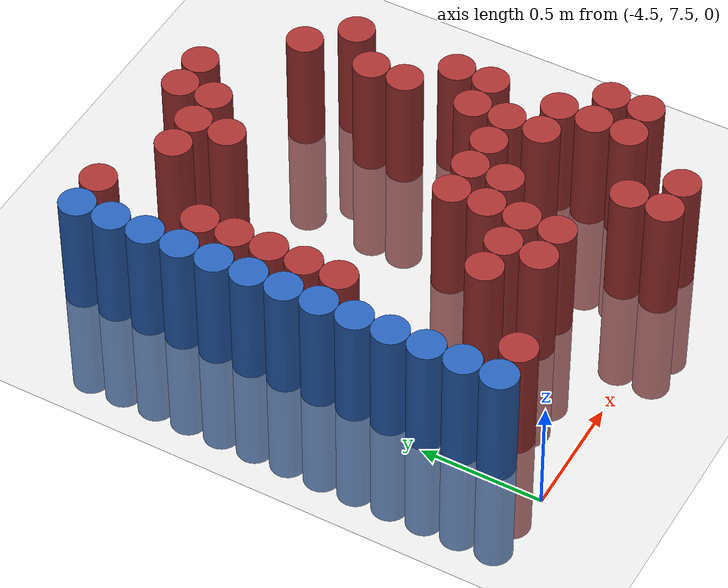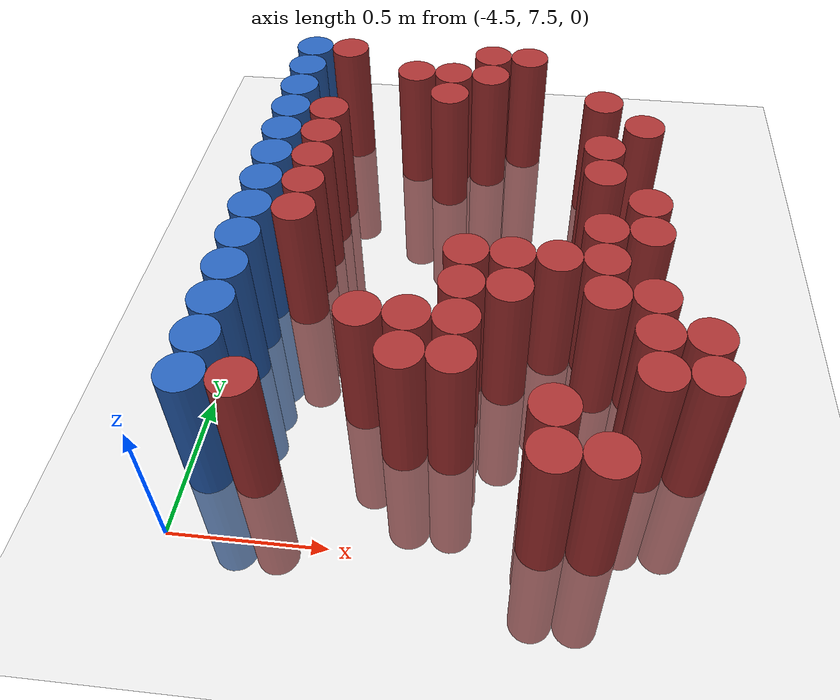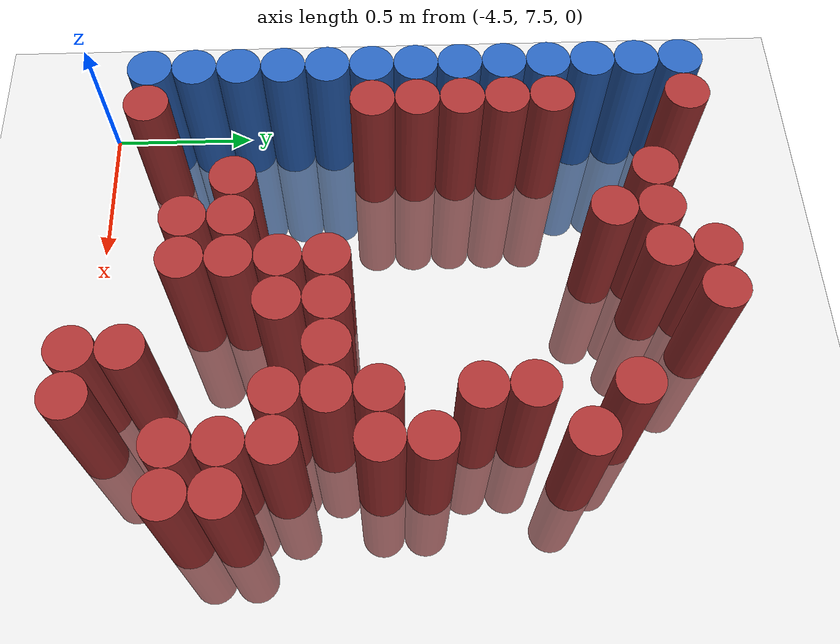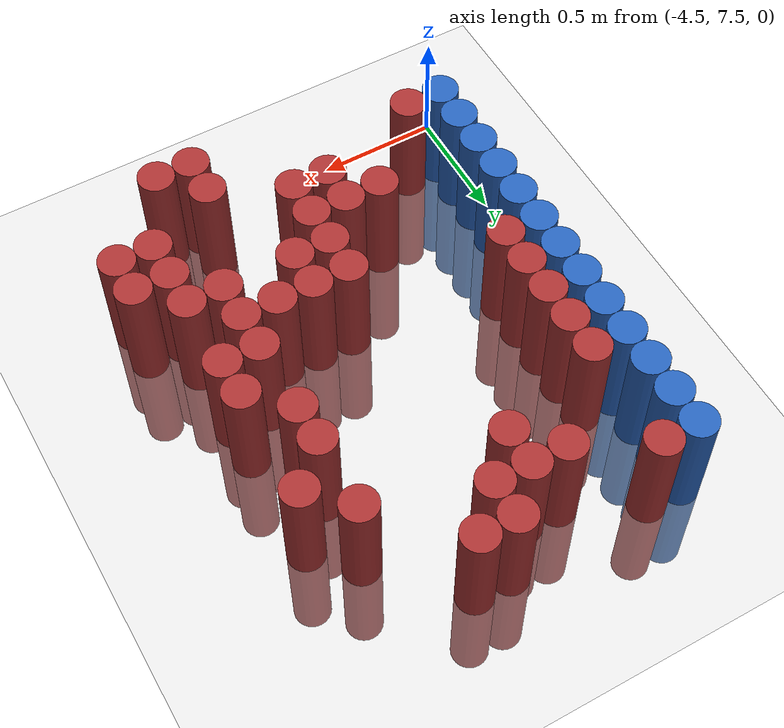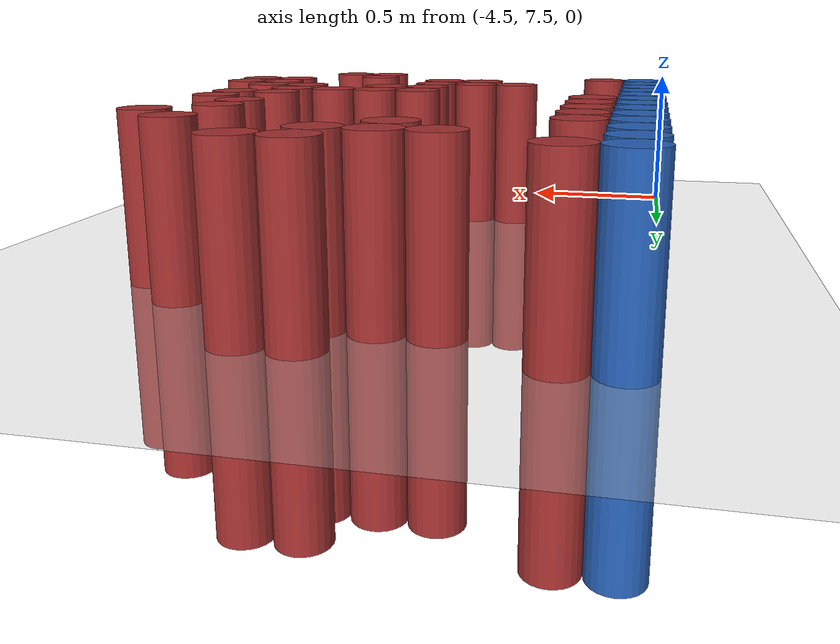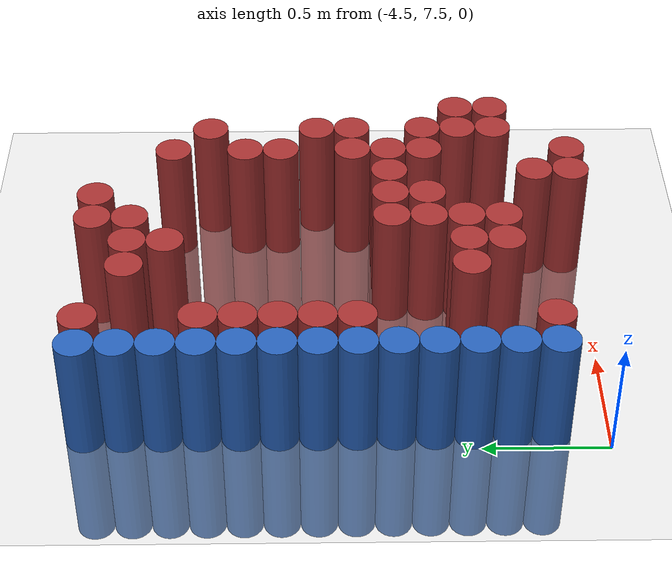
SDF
<sdf version="1.6">
 <world name="default">
  <model name="ground_plane">
   <static>1</static>
   <link name="link">
    <collision name="collision">
     <geometry><plane><normal>0 0 1</normal><size>100 100</size></plane></geometry>
     <surface><friction><ode><mu>100</mu><mu2>50</mu2></ode></friction></surface>
    </collision>
    <visual name="visual">
     <cast_shadows>0</cast_shadows>
     <geometry><plane><normal>0 0 1</normal><size>100 100</size></plane></geometry>
     <material>
      <script><uri>file://media/materials/scripts/gazebo.material</uri><name>Gazebo/Grey</name></script>
     </material>
    </visual>
   </link>
  </model>
  <model name="unit_cylinder_113">
   <static>1</static>
   <pose>-4.425000 7.725000 0.000000 0.000000 0.000000 0.000000</pose>
   <link name="link">
    <inertial>
     <mass>1</mass>
     <inertia><ixx>0.145833</ixx><ixy>0</ixy><ixz>0</ixz><iyy>0.145833</iyy><iyz>0</iyz><izz>0.125</izz></inertia>
    </inertial>
    <collision name="collision">
     <geometry><cylinder><radius>0.075000</radius><length>1</length></cylinder></geometry>
    </collision>
    <visual name="visual">
     <geometry><cylinder><radius>0.075000</radius><length>1</length></cylinder></geometry>
     <material>
      <ambient>0.152000 0.379000 0.720000 1</ambient>
      <diffuse>0.152000 0.379000 0.720000 1</diffuse>
     </material>
     <material>
      <script><name>Gazebo/Grey</name><uri>file://media/materials/scripts/gazebo.material</uri></script>
     </material>
    </visual>
   </link>
  </model>
  <model name="unit_cylinder_114">
   <static>1</static>
   <pose>-4.425000 7.875000 0.000000 0.000000 0.000000 0.000000</pose>
   <link name="link">
    <inertial>
     <mass>1</mass>
     <inertia><ixx>0.145833</ixx><ixy>0</ixy><ixz>0</ixz><iyy>0.145833</iyy><iyz>0</iyz><izz>0.125</izz></inertia>
    </inertial>
    <collision name="collision">
     <geometry><cylinder><radius>0.075000</radius><length>1</length></cylinder></geometry>
    </collision>
    <visual name="visual">
     <geometry><cylinder><radius>0.075000</radius><length>1</length></cylinder></geometry>
     <material>
      <ambient>0.152000 0.379000 0.720000 1</ambient>
      <diffuse>0.152000 0.379000 0.720000 1</diffuse>
     </material>
     <material>
      <script><name>Gazebo/Grey</name><uri>file://media/materials/scripts/gazebo.material</uri></script>
     </material>
    </visual>
   </link>
  </model>
  <model name="unit_cylinder_115">
   <static>1</static>
   <pose>-4.425000 8.025000 0.000000 0.000000 0.000000 0.000000</pose>
   <link name="link">
    <inertial>
     <mass>1</mass>
     <inertia><ixx>0.145833</ixx><ixy>0</ixy><ixz>0</ixz><iyy>0.145833</iyy><iyz>0</iyz><izz>0.125</izz></inertia>
    </inertial>
    <collision name="collision">
     <geometry><cylinder><radius>0.075000</radius><length>1</length></cylinder></geometry>
    </collision>
    <visual name="visual">
     <geometry><cylinder><radius>0.075000</radius><length>1</length></cylinder></geometry>
     <material>
      <ambient>0.152000 0.379000 0.720000 1</ambient>
      <diffuse>0.152000 0.379000 0.720000 1</diffuse>
     </material>
     <material>
      <script><name>Gazebo/Grey</name><uri>file://media/materials/scripts/gazebo.material</uri></script>
     </material>
    </visual>
   </link>
  </model>
  <model name="unit_cylinder_116">
   <static>1</static>
   <pose>-4.425000 8.175000 0.000000 0.000000 0.000000 0.000000</pose>
   <link name="link">
    <inertial>
     <mass>1</mass>
     <inertia><ixx>0.145833</ixx><ixy>0</ixy><ixz>0</ixz><iyy>0.145833</iyy><iyz>0</iyz><izz>0.125</izz></inertia>
    </inertial>
    <collision name="collision">
     <geometry><cylinder><radius>0.075000</radius><length>1</length></cylinder></geometry>
    </collision>
    <visual name="visual">
     <geometry><cylinder><radius>0.075000</radius><length>1</length></cylinder></geometry>
     <material>
      <ambient>0.152000 0.379000 0.720000 1</ambient>
      <diffuse>0.152000 0.379000 0.720000 1</diffuse>
     </material>
     <material>
      <script><name>Gazebo/Grey</name><uri>file://media/materials/scripts/gazebo.material</uri></script>
     </material>
    </visual>
   </link>
  </model>
  <model name="unit_cylinder_117">
   <static>1</static>
   <pose>-4.425000 8.325000 0.000000 0.000000 0.000000 0.000000</pose>
   <link name="link">
    <inertial>
     <mass>1</mass>
     <inertia><ixx>0.145833</ixx><ixy>0</ixy><ixz>0</ixz><iyy>0.145833</iyy><iyz>0</iyz><izz>0.125</izz></inertia>
    </inertial>
    <collision name="collision">
     <geometry><cylinder><radius>0.075000</radius><length>1</length></cylinder></geometry>
    </collision>
    <visual name="visual">
     <geometry><cylinder><radius>0.075000</radius><length>1</length></cylinder></geometry>
     <material>
      <ambient>0.152000 0.379000 0.720000 1</ambient>
      <diffuse>0.152000 0.379000 0.720000 1</diffuse>
     </material>
     <material>
      <script><name>Gazebo/Grey</name><uri>file://media/materials/scripts/gazebo.material</uri></script>
     </material>
    </visual>
   </link>
  </model>
  <model name="unit_cylinder_118">
   <static>1</static>
   <pose>-4.425000 8.475000 0.000000 0.000000 0.000000 0.000000</pose>
   <link name="link">
    <inertial>
     <mass>1</mass>
     <inertia><ixx>0.145833</ixx><ixy>0</ixy><ixz>0</ixz><iyy>0.145833</iyy><iyz>0</iyz><izz>0.125</izz></inertia>
    </inertial>
    <collision name="collision">
     <geometry><cylinder><radius>0.075000</radius><length>1</length></cylinder></geometry>
    </collision>
    <visual name="visual">
     <geometry><cylinder><radius>0.075000</radius><length>1</length></cylinder></geometry>
     <material>
      <ambient>0.152000 0.379000 0.720000 1</ambient>
      <diffuse>0.152000 0.379000 0.720000 1</diffuse>
     </material>
     <material>
      <script><name>Gazebo/Grey</name><uri>file://media/materials/scripts/gazebo.material</uri></script>
     </material>
    </visual>
   </link>
  </model>
  <model name="unit_cylinder_119">
   <static>1</static>
   <pose>-4.425000 8.625000 0.000000 0.000000 0.000000 0.000000</pose>
   <link name="link">
    <inertial>
     <mass>1</mass>
     <inertia><ixx>0.145833</ixx><ixy>0</ixy><ixz>0</ixz><iyy>0.145833</iyy><iyz>0</iyz><izz>0.125</izz></inertia>
    </inertial>
    <collision name="collision">
     <geometry><cylinder><radius>0.075000</radius><length>1</length></cylinder></geometry>
    </collision>
    <visual name="visual">
     <geometry><cylinder><radius>0.075000</radius><length>1</length></cylinder></geometry>
     <material>
      <ambient>0.152000 0.379000 0.720000 1</ambient>
      <diffuse>0.152000 0.379000 0.720000 1</diffuse>
     </material>
     <material>
      <script><name>Gazebo/Grey</name><uri>file://media/materials/scripts/gazebo.material</uri></script>
     </material>
    </visual>
   </link>
  </model>
  <model name="unit_cylinder_120">
   <static>1</static>
   <pose>-4.425000 8.775000 0.000000 0.000000 0.000000 0.000000</pose>
   <link name="link">
    <inertial>
     <mass>1</mass>
     <inertia><ixx>0.145833</ixx><ixy>0</ixy><ixz>0</ixz><iyy>0.145833</iyy><iyz>0</iyz><izz>0.125</izz></inertia>
    </inertial>
    <collision name="collision">
     <geometry><cylinder><radius>0.075000</radius><length>1</length></cylinder></geometry>
    </collision>
    <visual name="visual">
     <geometry><cylinder><radius>0.075000</radius><length>1</length></cylinder></geometry>
     <material>
      <ambient>0.152000 0.379000 0.720000 1</ambient>
      <diffuse>0.152000 0.379000 0.720000 1</diffuse>
     </material>
     <material>
      <script><name>Gazebo/Grey</name><uri>file://media/materials/scripts/gazebo.material</uri></script>
     </material>
    </visual>
   </link>
  </model>
  <model name="unit_cylinder_121">
   <static>1</static>
   <pose>-4.425000 8.925000 0.000000 0.000000 0.000000 0.000000</pose>
   <link name="link">
    <inertial>
     <mass>1</mass>
     <inertia><ixx>0.145833</ixx><ixy>0</ixy><ixz>0</ixz><iyy>0.145833</iyy><iyz>0</iyz><izz>0.125</izz></inertia>
    </inertial>
    <collision name="collision">
     <geometry><cylinder><radius>0.075000</radius><length>1</length></cylinder></geometry>
    </collision>
    <visual name="visual">
     <geometry><cylinder><radius>0.075000</radius><length>1</length></cylinder></geometry>
     <material>
      <ambient>0.152000 0.379000 0.720000 1</ambient>
      <diffuse>0.152000 0.379000 0.720000 1</diffuse>
     </material>
     <material>
      <script><name>Gazebo/Grey</name><uri>file://media/materials/scripts/gazebo.material</uri></script>
     </material>
    </visual>
   </link>
  </model>
  <model name="unit_cylinder_122">
   <static>1</static>
   <pose>-4.425000 9.075000 0.000000 0.000000 0.000000 0.000000</pose>
   <link name="link">
    <inertial>
     <mass>1</mass>
     <inertia><ixx>0.145833</ixx><ixy>0</ixy><ixz>0</ixz><iyy>0.145833</iyy><iyz>0</iyz><izz>0.125</izz></inertia>
    </inertial>
    <collision name="collision">
     <geometry><cylinder><radius>0.075000</radius><length>1</length></cylinder></geometry>
    </collision>
    <visual name="visual">
     <geometry><cylinder><radius>0.075000</radius><length>1</length></cylinder></geometry>
     <material>
      <ambient>0.152000 0.379000 0.720000 1</ambient>
      <diffuse>0.152000 0.379000 0.720000 1</diffuse>
     </material>
     <material>
      <script><name>Gazebo/Grey</name><uri>file://media/materials/scripts/gazebo.material</uri></script>
     </material>
    </visual>
   </link>
  </model>
  <model name="unit_cylinder_123">
   <static>1</static>
   <pose>-4.425000 9.225000 0.000000 0.000000 0.000000 0.000000</pose>
   <link name="link">
    <inertial>
     <mass>1</mass>
     <inertia><ixx>0.145833</ixx><ixy>0</ixy><ixz>0</ixz><iyy>0.145833</iyy><iyz>0</iyz><izz>0.125</izz></inertia>
    </inertial>
    <collision name="collision">
     <geometry><cylinder><radius>0.075000</radius><length>1</length></cylinder></geometry>
    </collision>
    <visual name="visual">
     <geometry><cylinder><radius>0.075000</radius><length>1</length></cylinder></geometry>
     <material>
      <ambient>0.152000 0.379000 0.720000 1</ambient>
      <diffuse>0.152000 0.379000 0.720000 1</diffuse>
     </material>
     <material>
      <script><name>Gazebo/Grey</name><uri>file://media/materials/scripts/gazebo.material</uri></script>
     </material>
    </visual>
   </link>
  </model>
  <model name="unit_cylinder_124">
   <static>1</static>
   <pose>-4.425000 9.375000 0.000000 0.000000 0.000000 0.000000</pose>
   <link name="link">
    <inertial>
     <mass>1</mass>
     <inertia><ixx>0.145833</ixx><ixy>0</ixy><ixz>0</ixz><iyy>0.145833</iyy><iyz>0</iyz><izz>0.125</izz></inertia>
    </inertial>
    <collision name="collision">
     <geometry><cylinder><radius>0.075000</radius><length>1</length></cylinder></geometry>
    </collision>
    <visual name="visual">
     <geometry><cylinder><radius>0.075000</radius><length>1</length></cylinder></geometry>
     <material>
      <ambient>0.152000 0.379000 0.720000 1</ambient>
      <diffuse>0.152000 0.379000 0.720000 1</diffuse>
     </material>
     <material>
      <script><name>Gazebo/Grey</name><uri>file://media/materials/scripts/gazebo.material</uri></script>
     </material>
    </visual>
   </link>
  </model>
  <model name="unit_cylinder_125">
   <static>1</static>
   <pose>-4.425000 9.525000 0.000000 0.000000 0.000000 0.000000</pose>
   <link name="link">
    <inertial>
     <mass>1</mass>
     <inertia><ixx>0.145833</ixx><ixy>0</ixy><ixz>0</ixz><iyy>0.145833</iyy><iyz>0</iyz><izz>0.125</izz></inertia>
    </inertial>
    <collision name="collision">
     <geometry><cylinder><radius>0.075000</radius><length>1</length></cylinder></geometry>
    </collision>
    <visual name="visual">
     <geometry><cylinder><radius>0.075000</radius><length>1</length></cylinder></geometry>
     <material>
      <ambient>0.152000 0.379000 0.720000 1</ambient>
      <diffuse>0.152000 0.379000 0.720000 1</diffuse>
     </material>
     <material>
      <script><name>Gazebo/Grey</name><uri>file://media/materials/scripts/gazebo.material</uri></script>
     </material>
    </visual>
   </link>
  </model>
  <model name="unit_cylinder_133">
   <static>1</static>
   <pose>-4.275000 7.725000 0.000000 0.000000 0.000000 0.000000</pose>
   <link name="link">
    <inertial>
     <mass>1</mass>
     <inertia><ixx>0.145833</ixx><ixy>0</ixy><ixz>0</ixz><iyy>0.145833</iyy><iyz>0</iyz><izz>0.125</izz></inertia>
    </inertial>
    <collision name="collision">
     <geometry><cylinder><radius>0.075000</radius><length>1</length></cylinder></geometry>
    </collision>
    <visual name="visual">
     <geometry><cylinder><radius>0.075000</radius><length>1</length></cylinder></geometry>
     <material>
      <ambient>0.648000 0.192000 0.192000 1</ambient>
      <diffuse>0.648000 0.192000 0.192000 1</diffuse>
     </material>
     <material>
      <script><name>Gazebo/Grey</name><uri>file://media/materials/scripts/gazebo.material</uri></script>
     </material>
    </visual>
   </link>
  </model>
  <model name="unit_cylinder_134">
   <static>1</static>
   <pose>-4.275000 8.475000 0.000000 0.000000 0.000000 0.000000</pose>
   <link name="link">
    <inertial>
     <mass>1</mass>
     <inertia><ixx>0.145833</ixx><ixy>0</ixy><ixz>0</ixz><iyy>0.145833</iyy><iyz>0</iyz><izz>0.125</izz></inertia>
    </inertial>
    <collision name="collision">
     <geometry><cylinder><radius>0.075000</radius><length>1</length></cylinder></geometry>
    </collision>
    <visual name="visual">
     <geometry><cylinder><radius>0.075000</radius><length>1</length></cylinder></geometry>
     <material>
      <ambient>0.648000 0.192000 0.192000 1</ambient>
      <diffuse>0.648000 0.192000 0.192000 1</diffuse>
     </material>
     <material>
      <script><name>Gazebo/Grey</name><uri>file://media/materials/scripts/gazebo.material</uri></script>
     </material>
    </visual>
   </link>
  </model>
  <model name="unit_cylinder_135">
   <static>1</static>
   <pose>-4.275000 8.625000 0.000000 0.000000 0.000000 0.000000</pose>
   <link name="link">
    <inertial>
     <mass>1</mass>
     <inertia><ixx>0.145833</ixx><ixy>0</ixy><ixz>0</ixz><iyy>0.145833</iyy><iyz>0</iyz><izz>0.125</izz></inertia>
    </inertial>
    <collision name="collision">
     <geometry><cylinder><radius>0.075000</radius><length>1</length></cylinder></geometry>
    </collision>
    <visual name="visual">
     <geometry><cylinder><radius>0.075000</radius><length>1</length></cylinder></geometry>
     <material>
      <ambient>0.648000 0.192000 0.192000 1</ambient>
      <diffuse>0.648000 0.192000 0.192000 1</diffuse>
     </material>
     <material>
      <script><name>Gazebo/Grey</name><uri>file://media/materials/scripts/gazebo.material</uri></script>
     </material>
    </visual>
   </link>
  </model>
  <model name="unit_cylinder_136">
   <static>1</static>
   <pose>-4.275000 8.775000 0.000000 0.000000 0.000000 0.000000</pose>
   <link name="link">
    <inertial>
     <mass>1</mass>
     <inertia><ixx>0.145833</ixx><ixy>0</ixy><ixz>0</ixz><iyy>0.145833</iyy><iyz>0</iyz><izz>0.125</izz></inertia>
    </inertial>
    <collision name="collision">
     <geometry><cylinder><radius>0.075000</radius><length>1</length></cylinder></geometry>
    </collision>
    <visual name="visual">
     <geometry><cylinder><radius>0.075000</radius><length>1</length></cylinder></geometry>
     <material>
      <ambient>0.648000 0.192000 0.192000 1</ambient>
      <diffuse>0.648000 0.192000 0.192000 1</diffuse>
     </material>
     <material>
      <script><name>Gazebo/Grey</name><uri>file://media/materials/scripts/gazebo.material</uri></script>
     </material>
    </visual>
   </link>
  </model>
  <model name="unit_cylinder_137">
   <static>1</static>
   <pose>-4.275000 8.925000 0.000000 0.000000 0.000000 0.000000</pose>
   <link name="link">
    <inertial>
     <mass>1</mass>
     <inertia><ixx>0.145833</ixx><ixy>0</ixy><ixz>0</ixz><iyy>0.145833</iyy><iyz>0</iyz><izz>0.125</izz></inertia>
    </inertial>
    <collision name="collision">
     <geometry><cylinder><radius>0.075000</radius><length>1</length></cylinder></geometry>
    </collision>
    <visual name="visual">
     <geometry><cylinder><radius>0.075000</radius><length>1</length></cylinder></geometry>
     <material>
      <ambient>0.648000 0.192000 0.192000 1</ambient>
      <diffuse>0.648000 0.192000 0.192000 1</diffuse>
     </material>
     <material>
      <script><name>Gazebo/Grey</name><uri>file://media/materials/scripts/gazebo.material</uri></script>
     </material>
    </visual>
   </link>
  </model>
  <model name="unit_cylinder_138">
   <static>1</static>
   <pose>-4.275000 9.075000 0.000000 0.000000 0.000000 0.000000</pose>
   <link name="link">
    <inertial>
     <mass>1</mass>
     <inertia><ixx>0.145833</ixx><ixy>0</ixy><ixz>0</ixz><iyy>0.145833</iyy><iyz>0</iyz><izz>0.125</izz></inertia>
    </inertial>
    <collision name="collision">
     <geometry><cylinder><radius>0.075000</radius><length>1</length></cylinder></geometry>
    </collision>
    <visual name="visual">
     <geometry><cylinder><radius>0.075000</radius><length>1</length></cylinder></geometry>
     <material>
      <ambient>0.648000 0.192000 0.192000 1</ambient>
      <diffuse>0.648000 0.192000 0.192000 1</diffuse>
     </material>
     <material>
      <script><name>Gazebo/Grey</name><uri>file://media/materials/scripts/gazebo.material</uri></script>
     </material>
    </visual>
   </link>
  </model>
  <model name="unit_cylinder_139">
   <static>1</static>
   <pose>-4.275000 9.525000 0.000000 0.000000 0.000000 0.000000</pose>
   <link name="link">
    <inertial>
     <mass>1</mass>
     <inertia><ixx>0.145833</ixx><ixy>0</ixy><ixz>0</ixz><iyy>0.145833</iyy><iyz>0</iyz><izz>0.125</izz></inertia>
    </inertial>
    <collision name="collision">
     <geometry><cylinder><radius>0.075000</radius><length>1</length></cylinder></geometry>
    </collision>
    <visual name="visual">
     <geometry><cylinder><radius>0.075000</radius><length>1</length></cylinder></geometry>
     <material>
      <ambient>0.648000 0.192000 0.192000 1</ambient>
      <diffuse>0.648000 0.192000 0.192000 1</diffuse>
     </material>
     <material>
      <script><name>Gazebo/Grey</name><uri>file://media/materials/scripts/gazebo.material</uri></script>
     </material>
    </visual>
   </link>
  </model>
  <model name="unit_cylinder_154">
   <static>1</static>
   <pose>-3.975000 8.025000 0.000000 0.000000 0.000000 0.000000</pose>
   <link name="link">
    <inertial>
     <mass>1</mass>
     <inertia><ixx>0.145833</ixx><ixy>0</ixy><ixz>0</ixz><iyy>0.145833</iyy><iyz>0</iyz><izz>0.125</izz></inertia>
    </inertial>
    <collision name="collision">
     <geometry><cylinder><radius>0.075000</radius><length>1</length></cylinder></geometry>
    </collision>
    <visual name="visual">
     <geometry><cylinder><radius>0.075000</radius><length>1</length></cylinder></geometry>
     <material>
      <ambient>0.648000 0.192000 0.192000 1</ambient>
      <diffuse>0.648000 0.192000 0.192000 1</diffuse>
     </material>
     <material>
      <script><name>Gazebo/Grey</name><uri>file://media/materials/scripts/gazebo.material</uri></script>
     </material>
    </visual>
   </link>
  </model>
  <model name="unit_cylinder_155">
   <static>1</static>
   <pose>-3.975000 9.375000 0.000000 0.000000 0.000000 0.000000</pose>
   <link name="link">
    <inertial>
     <mass>1</mass>
     <inertia><ixx>0.145833</ixx><ixy>0</ixy><ixz>0</ixz><iyy>0.145833</iyy><iyz>0</iyz><izz>0.125</izz></inertia>
    </inertial>
    <collision name="collision">
     <geometry><cylinder><radius>0.075000</radius><length>1</length></cylinder></geometry>
    </collision>
    <visual name="visual">
     <geometry><cylinder><radius>0.075000</radius><length>1</length></cylinder></geometry>
     <material>
      <ambient>0.648000 0.192000 0.192000 1</ambient>
      <diffuse>0.648000 0.192000 0.192000 1</diffuse>
     </material>
     <material>
      <script><name>Gazebo/Grey</name><uri>file://media/materials/scripts/gazebo.material</uri></script>
     </material>
    </visual>
   </link>
  </model>
  <model name="unit_cylinder_161">
   <static>1</static>
   <pose>-3.825000 7.875000 0.000000 0.000000 0.000000 0.000000</pose>
   <link name="link">
    <inertial>
     <mass>1</mass>
     <inertia><ixx>0.145833</ixx><ixy>0</ixy><ixz>0</ixz><iyy>0.145833</iyy><iyz>0</iyz><izz>0.125</izz></inertia>
    </inertial>
    <collision name="collision">
     <geometry><cylinder><radius>0.075000</radius><length>1</length></cylinder></geometry>
    </collision>
    <visual name="visual">
     <geometry><cylinder><radius>0.075000</radius><length>1</length></cylinder></geometry>
     <material>
      <ambient>0.648000 0.192000 0.192000 1</ambient>
      <diffuse>0.648000 0.192000 0.192000 1</diffuse>
     </material>
     <material>
      <script><name>Gazebo/Grey</name><uri>file://media/materials/scripts/gazebo.material</uri></script>
     </material>
    </visual>
   </link>
  </model>
  <model name="unit_cylinder_162">
   <static>1</static>
   <pose>-3.825000 8.025000 0.000000 0.000000 0.000000 0.000000</pose>
   <link name="link">
    <inertial>
     <mass>1</mass>
     <inertia><ixx>0.145833</ixx><ixy>0</ixy><ixz>0</ixz><iyy>0.145833</iyy><iyz>0</iyz><izz>0.125</izz></inertia>
    </inertial>
    <collision name="collision">
     <geometry><cylinder><radius>0.075000</radius><length>1</length></cylinder></geometry>
    </collision>
    <visual name="visual">
     <geometry><cylinder><radius>0.075000</radius><length>1</length></cylinder></geometry>
     <material>
      <ambient>0.648000 0.192000 0.192000 1</ambient>
      <diffuse>0.648000 0.192000 0.192000 1</diffuse>
     </material>
     <material>
      <script><name>Gazebo/Grey</name><uri>file://media/materials/scripts/gazebo.material</uri></script>
     </material>
    </visual>
   </link>
  </model>
  <model name="unit_cylinder_163">
   <static>1</static>
   <pose>-3.825000 9.225000 0.000000 0.000000 0.000000 0.000000</pose>
   <link name="link">
    <inertial>
     <mass>1</mass>
     <inertia><ixx>0.145833</ixx><ixy>0</ixy><ixz>0</ixz><iyy>0.145833</iyy><iyz>0</iyz><izz>0.125</izz></inertia>
    </inertial>
    <collision name="collision">
     <geometry><cylinder><radius>0.075000</radius><length>1</length></cylinder></geometry>
    </collision>
    <visual name="visual">
     <geometry><cylinder><radius>0.075000</radius><length>1</length></cylinder></geometry>
     <material>
      <ambient>0.648000 0.192000 0.192000 1</ambient>
      <diffuse>0.648000 0.192000 0.192000 1</diffuse>
     </material>
     <material>
      <script><name>Gazebo/Grey</name><uri>file://media/materials/scripts/gazebo.material</uri></script>
     </material>
    </visual>
   </link>
  </model>
  <model name="unit_cylinder_164">
   <static>1</static>
   <pose>-3.825000 9.375000 0.000000 0.000000 0.000000 0.000000</pose>
   <link name="link">
    <inertial>
     <mass>1</mass>
     <inertia><ixx>0.145833</ixx><ixy>0</ixy><ixz>0</ixz><iyy>0.145833</iyy><iyz>0</iyz><izz>0.125</izz></inertia>
    </inertial>
    <collision name="collision">
     <geometry><cylinder><radius>0.075000</radius><length>1</length></cylinder></geometry>
    </collision>
    <visual name="visual">
     <geometry><cylinder><radius>0.075000</radius><length>1</length></cylinder></geometry>
     <material>
      <ambient>0.648000 0.192000 0.192000 1</ambient>
      <diffuse>0.648000 0.192000 0.192000 1</diffuse>
     </material>
     <material>
      <script><name>Gazebo/Grey</name><uri>file://media/materials/scripts/gazebo.material</uri></script>
     </material>
    </visual>
   </link>
  </model>
  <model name="unit_cylinder_170">
   <static>1</static>
   <pose>-3.675000 7.875000 0.000000 0.000000 0.000000 0.000000</pose>
   <link name="link">
    <inertial>
     <mass>1</mass>
     <inertia><ixx>0.145833</ixx><ixy>0</ixy><ixz>0</ixz><iyy>0.145833</iyy><iyz>0</iyz><izz>0.125</izz></inertia>
    </inertial>
    <collision name="collision">
     <geometry><cylinder><radius>0.075000</radius><length>1</length></cylinder></geometry>
    </collision>
    <visual name="visual">
     <geometry><cylinder><radius>0.075000</radius><length>1</length></cylinder></geometry>
     <material>
      <ambient>0.648000 0.192000 0.192000 1</ambient>
      <diffuse>0.648000 0.192000 0.192000 1</diffuse>
     </material>
     <material>
      <script><name>Gazebo/Grey</name><uri>file://media/materials/scripts/gazebo.material</uri></script>
     </material>
    </visual>
   </link>
  </model>
  <model name="unit_cylinder_171">
   <static>1</static>
   <pose>-3.675000 8.025000 0.000000 0.000000 0.000000 0.000000</pose>
   <link name="link">
    <inertial>
     <mass>1</mass>
     <inertia><ixx>0.145833</ixx><ixy>0</ixy><ixz>0</ixz><iyy>0.145833</iyy><iyz>0</iyz><izz>0.125</izz></inertia>
    </inertial>
    <collision name="collision">
     <geometry><cylinder><radius>0.075000</radius><length>1</length></cylinder></geometry>
    </collision>
    <visual name="visual">
     <geometry><cylinder><radius>0.075000</radius><length>1</length></cylinder></geometry>
     <material>
      <ambient>0.648000 0.192000 0.192000 1</ambient>
      <diffuse>0.648000 0.192000 0.192000 1</diffuse>
     </material>
     <material>
      <script><name>Gazebo/Grey</name><uri>file://media/materials/scripts/gazebo.material</uri></script>
     </material>
    </visual>
   </link>
  </model>
  <model name="unit_cylinder_172">
   <static>1</static>
   <pose>-3.675000 8.175000 0.000000 0.000000 0.000000 0.000000</pose>
   <link name="link">
    <inertial>
     <mass>1</mass>
     <inertia><ixx>0.145833</ixx><ixy>0</ixy><ixz>0</ixz><iyy>0.145833</iyy><iyz>0</iyz><izz>0.125</izz></inertia>
    </inertial>
    <collision name="collision">
     <geometry><cylinder><radius>0.075000</radius><length>1</length></cylinder></geometry>
    </collision>
    <visual name="visual">
     <geometry><cylinder><radius>0.075000</radius><length>1</length></cylinder></geometry>
     <material>
      <ambient>0.648000 0.192000 0.192000 1</ambient>
      <diffuse>0.648000 0.192000 0.192000 1</diffuse>
     </material>
     <material>
      <script><name>Gazebo/Grey</name><uri>file://media/materials/scripts/gazebo.material</uri></script>
     </material>
    </visual>
   </link>
  </model>
  <model name="unit_cylinder_173">
   <static>1</static>
   <pose>-3.675000 8.325000 0.000000 0.000000 0.000000 0.000000</pose>
   <link name="link">
    <inertial>
     <mass>1</mass>
     <inertia><ixx>0.145833</ixx><ixy>0</ixy><ixz>0</ixz><iyy>0.145833</iyy><iyz>0</iyz><izz>0.125</izz></inertia>
    </inertial>
    <collision name="collision">
     <geometry><cylinder><radius>0.075000</radius><length>1</length></cylinder></geometry>
    </collision>
    <visual name="visual">
     <geometry><cylinder><radius>0.075000</radius><length>1</length></cylinder></geometry>
     <material>
      <ambient>0.648000 0.192000 0.192000 1</ambient>
      <diffuse>0.648000 0.192000 0.192000 1</diffuse>
     </material>
     <material>
      <script><name>Gazebo/Grey</name><uri>file://media/materials/scripts/gazebo.material</uri></script>
     </material>
    </visual>
   </link>
  </model>
  <model name="unit_cylinder_174">
   <static>1</static>
   <pose>-3.675000 9.375000 0.000000 0.000000 0.000000 0.000000</pose>
   <link name="link">
    <inertial>
     <mass>1</mass>
     <inertia><ixx>0.145833</ixx><ixy>0</ixy><ixz>0</ixz><iyy>0.145833</iyy><iyz>0</iyz><izz>0.125</izz></inertia>
    </inertial>
    <collision name="collision">
     <geometry><cylinder><radius>0.075000</radius><length>1</length></cylinder></geometry>
    </collision>
    <visual name="visual">
     <geometry><cylinder><radius>0.075000</radius><length>1</length></cylinder></geometry>
     <material>
      <ambient>0.648000 0.192000 0.192000 1</ambient>
      <diffuse>0.648000 0.192000 0.192000 1</diffuse>
     </material>
     <material>
      <script><name>Gazebo/Grey</name><uri>file://media/materials/scripts/gazebo.material</uri></script>
     </material>
    </visual>
   </link>
  </model>
  <model name="unit_cylinder_175">
   <static>1</static>
   <pose>-3.675000 9.525000 0.000000 0.000000 0.000000 0.000000</pose>
   <link name="link">
    <inertial>
     <mass>1</mass>
     <inertia><ixx>0.145833</ixx><ixy>0</ixy><ixz>0</ixz><iyy>0.145833</iyy><iyz>0</iyz><izz>0.125</izz></inertia>
    </inertial>
    <collision name="collision">
     <geometry><cylinder><radius>0.075000</radius><length>1</length></cylinder></geometry>
    </collision>
    <visual name="visual">
     <geometry><cylinder><radius>0.075000</radius><length>1</length></cylinder></geometry>
     <material>
      <ambient>0.648000 0.192000 0.192000 1</ambient>
      <diffuse>0.648000 0.192000 0.192000 1</diffuse>
     </material>
     <material>
      <script><name>Gazebo/Grey</name><uri>file://media/materials/scripts/gazebo.material</uri></script>
     </material>
    </visual>
   </link>
  </model>
  <model name="unit_cylinder_178">
   <static>1</static>
   <pose>-3.525000 8.175000 0.000000 0.000000 0.000000 0.000000</pose>
   <link name="link">
    <inertial>
     <mass>1</mass>
     <inertia><ixx>0.145833</ixx><ixy>0</ixy><ixz>0</ixz><iyy>0.145833</iyy><iyz>0</iyz><izz>0.125</izz></inertia>
    </inertial>
    <collision name="collision">
     <geometry><cylinder><radius>0.075000</radius><length>1</length></cylinder></geometry>
    </collision>
    <visual name="visual">
     <geometry><cylinder><radius>0.075000</radius><length>1</length></cylinder></geometry>
     <material>
      <ambient>0.648000 0.192000 0.192000 1</ambient>
      <diffuse>0.648000 0.192000 0.192000 1</diffuse>
     </material>
     <material>
      <script><name>Gazebo/Grey</name><uri>file://media/materials/scripts/gazebo.material</uri></script>
     </material>
    </visual>
   </link>
  </model>
  <model name="unit_cylinder_179">
   <static>1</static>
   <pose>-3.525000 8.325000 0.000000 0.000000 0.000000 0.000000</pose>
   <link name="link">
    <inertial>
     <mass>1</mass>
     <inertia><ixx>0.145833</ixx><ixy>0</ixy><ixz>0</ixz><iyy>0.145833</iyy><iyz>0</iyz><izz>0.125</izz></inertia>
    </inertial>
    <collision name="collision">
     <geometry><cylinder><radius>0.075000</radius><length>1</length></cylinder></geometry>
    </collision>
    <visual name="visual">
     <geometry><cylinder><radius>0.075000</radius><length>1</length></cylinder></geometry>
     <material>
      <ambient>0.648000 0.192000 0.192000 1</ambient>
      <diffuse>0.648000 0.192000 0.192000 1</diffuse>
     </material>
     <material>
      <script><name>Gazebo/Grey</name><uri>file://media/materials/scripts/gazebo.material</uri></script>
     </material>
    </visual>
   </link>
  </model>
  <model name="unit_cylinder_180">
   <static>1</static>
   <pose>-3.525000 9.525000 0.000000 0.000000 0.000000 0.000000</pose>
   <link name="link">
    <inertial>
     <mass>1</mass>
     <inertia><ixx>0.145833</ixx><ixy>0</ixy><ixz>0</ixz><iyy>0.145833</iyy><iyz>0</iyz><izz>0.125</izz></inertia>
    </inertial>
    <collision name="collision">
     <geometry><cylinder><radius>0.075000</radius><length>1</length></cylinder></geometry>
    </collision>
    <visual name="visual">
     <geometry><cylinder><radius>0.075000</radius><length>1</length></cylinder></geometry>
     <material>
      <ambient>0.648000 0.192000 0.192000 1</ambient>
      <diffuse>0.648000 0.192000 0.192000 1</diffuse>
     </material>
     <material>
      <script><name>Gazebo/Grey</name><uri>file://media/materials/scripts/gazebo.material</uri></script>
     </material>
    </visual>
   </link>
  </model>
  <model name="unit_cylinder_185">
   <static>1</static>
   <pose>-3.375000 7.575000 0.000000 0.000000 0.000000 0.000000</pose>
   <link name="link">
    <inertial>
     <mass>1</mass>
     <inertia><ixx>0.145833</ixx><ixy>0</ixy><ixz>0</ixz><iyy>0.145833</iyy><iyz>0</iyz><izz>0.125</izz></inertia>
    </inertial>
    <collision name="collision">
     <geometry><cylinder><radius>0.075000</radius><length>1</length></cylinder></geometry>
    </collision>
    <visual name="visual">
     <geometry><cylinder><radius>0.075000</radius><length>1</length></cylinder></geometry>
     <material>
      <ambient>0.648000 0.192000 0.192000 1</ambient>
      <diffuse>0.648000 0.192000 0.192000 1</diffuse>
     </material>
     <material>
      <script><name>Gazebo/Grey</name><uri>file://media/materials/scripts/gazebo.material</uri></script>
     </material>
    </visual>
   </link>
  </model>
  <model name="unit_cylinder_186">
   <static>1</static>
   <pose>-3.375000 7.725000 0.000000 0.000000 0.000000 0.000000</pose>
   <link name="link">
    <inertial>
     <mass>1</mass>
     <inertia><ixx>0.145833</ixx><ixy>0</ixy><ixz>0</ixz><iyy>0.145833</iyy><iyz>0</iyz><izz>0.125</izz></inertia>
    </inertial>
    <collision name="collision">
     <geometry><cylinder><radius>0.075000</radius><length>1</length></cylinder></geometry>
    </collision>
    <visual name="visual">
     <geometry><cylinder><radius>0.075000</radius><length>1</length></cylinder></geometry>
     <material>
      <ambient>0.648000 0.192000 0.192000 1</ambient>
      <diffuse>0.648000 0.192000 0.192000 1</diffuse>
     </material>
     <material>
      <script><name>Gazebo/Grey</name><uri>file://media/materials/scripts/gazebo.material</uri></script>
     </material>
    </visual>
   </link>
  </model>
  <model name="unit_cylinder_187">
   <static>1</static>
   <pose>-3.375000 8.325000 0.000000 0.000000 0.000000 0.000000</pose>
   <link name="link">
    <inertial>
     <mass>1</mass>
     <inertia><ixx>0.145833</ixx><ixy>0</ixy><ixz>0</ixz><iyy>0.145833</iyy><iyz>0</iyz><izz>0.125</izz></inertia>
    </inertial>
    <collision name="collision">
     <geometry><cylinder><radius>0.075000</radius><length>1</length></cylinder></geometry>
    </collision>
    <visual name="visual">
     <geometry><cylinder><radius>0.075000</radius><length>1</length></cylinder></geometry>
     <material>
      <ambient>0.648000 0.192000 0.192000 1</ambient>
      <diffuse>0.648000 0.192000 0.192000 1</diffuse>
     </material>
     <material>
      <script><name>Gazebo/Grey</name><uri>file://media/materials/scripts/gazebo.material</uri></script>
     </material>
    </visual>
   </link>
  </model>
  <model name="unit_cylinder_197">
   <static>1</static>
   <pose>-3.225000 7.575000 0.000000 0.000000 0.000000 0.000000</pose>
   <link name="link">
    <inertial>
     <mass>1</mass>
     <inertia><ixx>0.145833</ixx><ixy>0</ixy><ixz>0</ixz><iyy>0.145833</iyy><iyz>0</iyz><izz>0.125</izz></inertia>
    </inertial>
    <collision name="collision">
     <geometry><cylinder><radius>0.075000</radius><length>1</length></cylinder></geometry>
    </collision>
    <visual name="visual">
     <geometry><cylinder><radius>0.075000</radius><length>1</length></cylinder></geometry>
     <material>
      <ambient>0.648000 0.192000 0.192000 1</ambient>
      <diffuse>0.648000 0.192000 0.192000 1</diffuse>
     </material>
     <material>
      <script><name>Gazebo/Grey</name><uri>file://media/materials/scripts/gazebo.material</uri></script>
     </material>
    </visual>
   </link>
  </model>
  <model name="unit_cylinder_198">
   <static>1</static>
   <pose>-3.225000 8.175000 0.000000 0.000000 0.000000 0.000000</pose>
   <link name="link">
    <inertial>
     <mass>1</mass>
     <inertia><ixx>0.145833</ixx><ixy>0</ixy><ixz>0</ixz><iyy>0.145833</iyy><iyz>0</iyz><izz>0.125</izz></inertia>
    </inertial>
    <collision name="collision">
     <geometry><cylinder><radius>0.075000</radius><length>1</length></cylinder></geometry>
    </collision>
    <visual name="visual">
     <geometry><cylinder><radius>0.075000</radius><length>1</length></cylinder></geometry>
     <material>
      <ambient>0.648000 0.192000 0.192000 1</ambient>
      <diffuse>0.648000 0.192000 0.192000 1</diffuse>
     </material>
     <material>
      <script><name>Gazebo/Grey</name><uri>file://media/materials/scripts/gazebo.material</uri></script>
     </material>
    </visual>
   </link>
  </model>
  <model name="unit_cylinder_199">
   <static>1</static>
   <pose>-3.225000 8.325000 0.000000 0.000000 0.000000 0.000000</pose>
   <link name="link">
    <inertial>
     <mass>1</mass>
     <inertia><ixx>0.145833</ixx><ixy>0</ixy><ixz>0</ixz><iyy>0.145833</iyy><iyz>0</iyz><izz>0.125</izz></inertia>
    </inertial>
    <collision name="collision">
     <geometry><cylinder><radius>0.075000</radius><length>1</length></cylinder></geometry>
    </collision>
    <visual name="visual">
     <geometry><cylinder><radius>0.075000</radius><length>1</length></cylinder></geometry>
     <material>
      <ambient>0.648000 0.192000 0.192000 1</ambient>
      <diffuse>0.648000 0.192000 0.192000 1</diffuse>
     </material>
     <material>
      <script><name>Gazebo/Grey</name><uri>file://media/materials/scripts/gazebo.material</uri></script>
     </material>
    </visual>
   </link>
  </model>
  <model name="unit_cylinder_200">
   <static>1</static>
   <pose>-3.225000 8.475000 0.000000 0.000000 0.000000 0.000000</pose>
   <link name="link">
    <inertial>
     <mass>1</mass>
     <inertia><ixx>0.145833</ixx><ixy>0</ixy><ixz>0</ixz><iyy>0.145833</iyy><iyz>0</iyz><izz>0.125</izz></inertia>
    </inertial>
    <collision name="collision">
     <geometry><cylinder><radius>0.075000</radius><length>1</length></cylinder></geometry>
    </collision>
    <visual name="visual">
     <geometry><cylinder><radius>0.075000</radius><length>1</length></cylinder></geometry>
     <material>
      <ambient>0.648000 0.192000 0.192000 1</ambient>
      <diffuse>0.648000 0.192000 0.192000 1</diffuse>
     </material>
     <material>
      <script><name>Gazebo/Grey</name><uri>file://media/materials/scripts/gazebo.material</uri></script>
     </material>
    </visual>
   </link>
  </model>
  <model name="unit_cylinder_201">
   <static>1</static>
   <pose>-3.225000 8.775000 0.000000 0.000000 0.000000 0.000000</pose>
   <link name="link">
    <inertial>
     <mass>1</mass>
     <inertia><ixx>0.145833</ixx><ixy>0</ixy><ixz>0</ixz><iyy>0.145833</iyy><iyz>0</iyz><izz>0.125</izz></inertia>
    </inertial>
    <collision name="collision">
     <geometry><cylinder><radius>0.075000</radius><length>1</length></cylinder></geometry>
    </collision>
    <visual name="visual">
     <geometry><cylinder><radius>0.075000</radius><length>1</length></cylinder></geometry>
     <material>
      <ambient>0.648000 0.192000 0.192000 1</ambient>
      <diffuse>0.648000 0.192000 0.192000 1</diffuse>
     </material>
     <material>
      <script><name>Gazebo/Grey</name><uri>file://media/materials/scripts/gazebo.material</uri></script>
     </material>
    </visual>
   </link>
  </model>
  <model name="unit_cylinder_202">
   <static>1</static>
   <pose>-3.225000 8.925000 0.000000 0.000000 0.000000 0.000000</pose>
   <link name="link">
    <inertial>
     <mass>1</mass>
     <inertia><ixx>0.145833</ixx><ixy>0</ixy><ixz>0</ixz><iyy>0.145833</iyy><iyz>0</iyz><izz>0.125</izz></inertia>
    </inertial>
    <collision name="collision">
     <geometry><cylinder><radius>0.075000</radius><length>1</length></cylinder></geometry>
    </collision>
    <visual name="visual">
     <geometry><cylinder><radius>0.075000</radius><length>1</length></cylinder></geometry>
     <material>
      <ambient>0.648000 0.192000 0.192000 1</ambient>
      <diffuse>0.648000 0.192000 0.192000 1</diffuse>
     </material>
     <material>
      <script><name>Gazebo/Grey</name><uri>file://media/materials/scripts/gazebo.material</uri></script>
     </material>
    </visual>
   </link>
  </model>
  <model name="unit_cylinder_203">
   <static>1</static>
   <pose>-3.225000 9.225000 0.000000 0.000000 0.000000 0.000000</pose>
   <link name="link">
    <inertial>
     <mass>1</mass>
     <inertia><ixx>0.145833</ixx><ixy>0</ixy><ixz>0</ixz><iyy>0.145833</iyy><iyz>0</iyz><izz>0.125</izz></inertia>
    </inertial>
    <collision name="collision">
     <geometry><cylinder><radius>0.075000</radius><length>1</length></cylinder></geometry>
    </collision>
    <visual name="visual">
     <geometry><cylinder><radius>0.075000</radius><length>1</length></cylinder></geometry>
     <material>
      <ambient>0.648000 0.192000 0.192000 1</ambient>
      <diffuse>0.648000 0.192000 0.192000 1</diffuse>
     </material>
     <material>
      <script><name>Gazebo/Grey</name><uri>file://media/materials/scripts/gazebo.material</uri></script>
     </material>
    </visual>
   </link>
  </model>
  <model name="unit_cylinder_215">
   <static>1</static>
   <pose>-3.075000 7.875000 0.000000 0.000000 0.000000 0.000000</pose>
   <link name="link">
    <inertial>
     <mass>1</mass>
     <inertia><ixx>0.145833</ixx><ixy>0</ixy><ixz>0</ixz><iyy>0.145833</iyy><iyz>0</iyz><izz>0.125</izz></inertia>
    </inertial>
    <collision name="collision">
     <geometry><cylinder><radius>0.075000</radius><length>1</length></cylinder></geometry>
    </collision>
    <visual name="visual">
     <geometry><cylinder><radius>0.075000</radius><length>1</length></cylinder></geometry>
     <material>
      <ambient>0.648000 0.192000 0.192000 1</ambient>
      <diffuse>0.648000 0.192000 0.192000 1</diffuse>
     </material>
     <material>
      <script><name>Gazebo/Grey</name><uri>file://media/materials/scripts/gazebo.material</uri></script>
     </material>
    </visual>
   </link>
  </model>
  <model name="unit_cylinder_216">
   <static>1</static>
   <pose>-3.075000 8.025000 0.000000 0.000000 0.000000 0.000000</pose>
   <link name="link">
    <inertial>
     <mass>1</mass>
     <inertia><ixx>0.145833</ixx><ixy>0</ixy><ixz>0</ixz><iyy>0.145833</iyy><iyz>0</iyz><izz>0.125</izz></inertia>
    </inertial>
    <collision name="collision">
     <geometry><cylinder><radius>0.075000</radius><length>1</length></cylinder></geometry>
    </collision>
    <visual name="visual">
     <geometry><cylinder><radius>0.075000</radius><length>1</length></cylinder></geometry>
     <material>
      <ambient>0.648000 0.192000 0.192000 1</ambient>
      <diffuse>0.648000 0.192000 0.192000 1</diffuse>
     </material>
     <material>
      <script><name>Gazebo/Grey</name><uri>file://media/materials/scripts/gazebo.material</uri></script>
     </material>
    </visual>
   </link>
  </model>
  <model name="unit_cylinder_217">
   <static>1</static>
   <pose>-3.075000 8.175000 0.000000 0.000000 0.000000 0.000000</pose>
   <link name="link">
    <inertial>
     <mass>1</mass>
     <inertia><ixx>0.145833</ixx><ixy>0</ixy><ixz>0</ixz><iyy>0.145833</iyy><iyz>0</iyz><izz>0.125</izz></inertia>
    </inertial>
    <collision name="collision">
     <geometry><cylinder><radius>0.075000</radius><length>1</length></cylinder></geometry>
    </collision>
    <visual name="visual">
     <geometry><cylinder><radius>0.075000</radius><length>1</length></cylinder></geometry>
     <material>
      <ambient>0.648000 0.192000 0.192000 1</ambient>
      <diffuse>0.648000 0.192000 0.192000 1</diffuse>
     </material>
     <material>
      <script><name>Gazebo/Grey</name><uri>file://media/materials/scripts/gazebo.material</uri></script>
     </material>
    </visual>
   </link>
  </model>
  <model name="unit_cylinder_218">
   <static>1</static>
   <pose>-3.075000 8.475000 0.000000 0.000000 0.000000 0.000000</pose>
   <link name="link">
    <inertial>
     <mass>1</mass>
     <inertia><ixx>0.145833</ixx><ixy>0</ixy><ixz>0</ixz><iyy>0.145833</iyy><iyz>0</iyz><izz>0.125</izz></inertia>
    </inertial>
    <collision name="collision">
     <geometry><cylinder><radius>0.075000</radius><length>1</length></cylinder></geometry>
    </collision>
    <visual name="visual">
     <geometry><cylinder><radius>0.075000</radius><length>1</length></cylinder></geometry>
     <material>
      <ambient>0.648000 0.192000 0.192000 1</ambient>
      <diffuse>0.648000 0.192000 0.192000 1</diffuse>
     </material>
     <material>
      <script><name>Gazebo/Grey</name><uri>file://media/materials/scripts/gazebo.material</uri></script>
     </material>
    </visual>
   </link>
  </model>
  <model name="unit_cylinder_219">
   <static>1</static>
   <pose>-3.075000 8.625000 0.000000 0.000000 0.000000 0.000000</pose>
   <link name="link">
    <inertial>
     <mass>1</mass>
     <inertia><ixx>0.145833</ixx><ixy>0</ixy><ixz>0</ixz><iyy>0.145833</iyy><iyz>0</iyz><izz>0.125</izz></inertia>
    </inertial>
    <collision name="collision">
     <geometry><cylinder><radius>0.075000</radius><length>1</length></cylinder></geometry>
    </collision>
    <visual name="visual">
     <geometry><cylinder><radius>0.075000</radius><length>1</length></cylinder></geometry>
     <material>
      <ambient>0.648000 0.192000 0.192000 1</ambient>
      <diffuse>0.648000 0.192000 0.192000 1</diffuse>
     </material>
     <material>
      <script><name>Gazebo/Grey</name><uri>file://media/materials/scripts/gazebo.material</uri></script>
     </material>
    </visual>
   </link>
  </model>
  <model name="unit_cylinder_220">
   <static>1</static>
   <pose>-3.075000 9.075000 0.000000 0.000000 0.000000 0.000000</pose>
   <link name="link">
    <inertial>
     <mass>1</mass>
     <inertia><ixx>0.145833</ixx><ixy>0</ixy><ixz>0</ixz><iyy>0.145833</iyy><iyz>0</iyz><izz>0.125</izz></inertia>
    </inertial>
    <collision name="collision">
     <geometry><cylinder><radius>0.075000</radius><length>1</length></cylinder></geometry>
    </collision>
    <visual name="visual">
     <geometry><cylinder><radius>0.075000</radius><length>1</length></cylinder></geometry>
     <material>
      <ambient>0.648000 0.192000 0.192000 1</ambient>
      <diffuse>0.648000 0.192000 0.192000 1</diffuse>
     </material>
     <material>
      <script><name>Gazebo/Grey</name><uri>file://media/materials/scripts/gazebo.material</uri></script>
     </material>
    </visual>
   </link>
  </model>
  <model name="unit_cylinder_227">
   <static>1</static>
   <pose>-2.925000 7.875000 0.000000 0.000000 0.000000 0.000000</pose>
   <link name="link">
    <inertial>
     <mass>1</mass>
     <inertia><ixx>0.145833</ixx><ixy>0</ixy><ixz>0</ixz><iyy>0.145833</iyy><iyz>0</iyz><izz>0.125</izz></inertia>
    </inertial>
    <collision name="collision">
     <geometry><cylinder><radius>0.075000</radius><length>1</length></cylinder></geometry>
    </collision>
    <visual name="visual">
     <geometry><cylinder><radius>0.075000</radius><length>1</length></cylinder></geometry>
     <material>
      <ambient>0.648000 0.192000 0.192000 1</ambient>
      <diffuse>0.648000 0.192000 0.192000 1</diffuse>
     </material>
     <material>
      <script><name>Gazebo/Grey</name><uri>file://media/materials/scripts/gazebo.material</uri></script>
     </material>
    </visual>
   </link>
  </model>
  <model name="unit_cylinder_228">
   <static>1</static>
   <pose>-2.925000 8.025000 0.000000 0.000000 0.000000 0.000000</pose>
   <link name="link">
    <inertial>
     <mass>1</mass>
     <inertia><ixx>0.145833</ixx><ixy>0</ixy><ixz>0</ixz><iyy>0.145833</iyy><iyz>0</iyz><izz>0.125</izz></inertia>
    </inertial>
    <collision name="collision">
     <geometry><cylinder><radius>0.075000</radius><length>1</length></cylinder></geometry>
    </collision>
    <visual name="visual">
     <geometry><cylinder><radius>0.075000</radius><length>1</length></cylinder></geometry>
     <material>
      <ambient>0.648000 0.192000 0.192000 1</ambient>
      <diffuse>0.648000 0.192000 0.192000 1</diffuse>
     </material>
     <material>
      <script><name>Gazebo/Grey</name><uri>file://media/materials/scripts/gazebo.material</uri></script>
     </material>
    </visual>
   </link>
  </model>
 </world>
</sdf>
